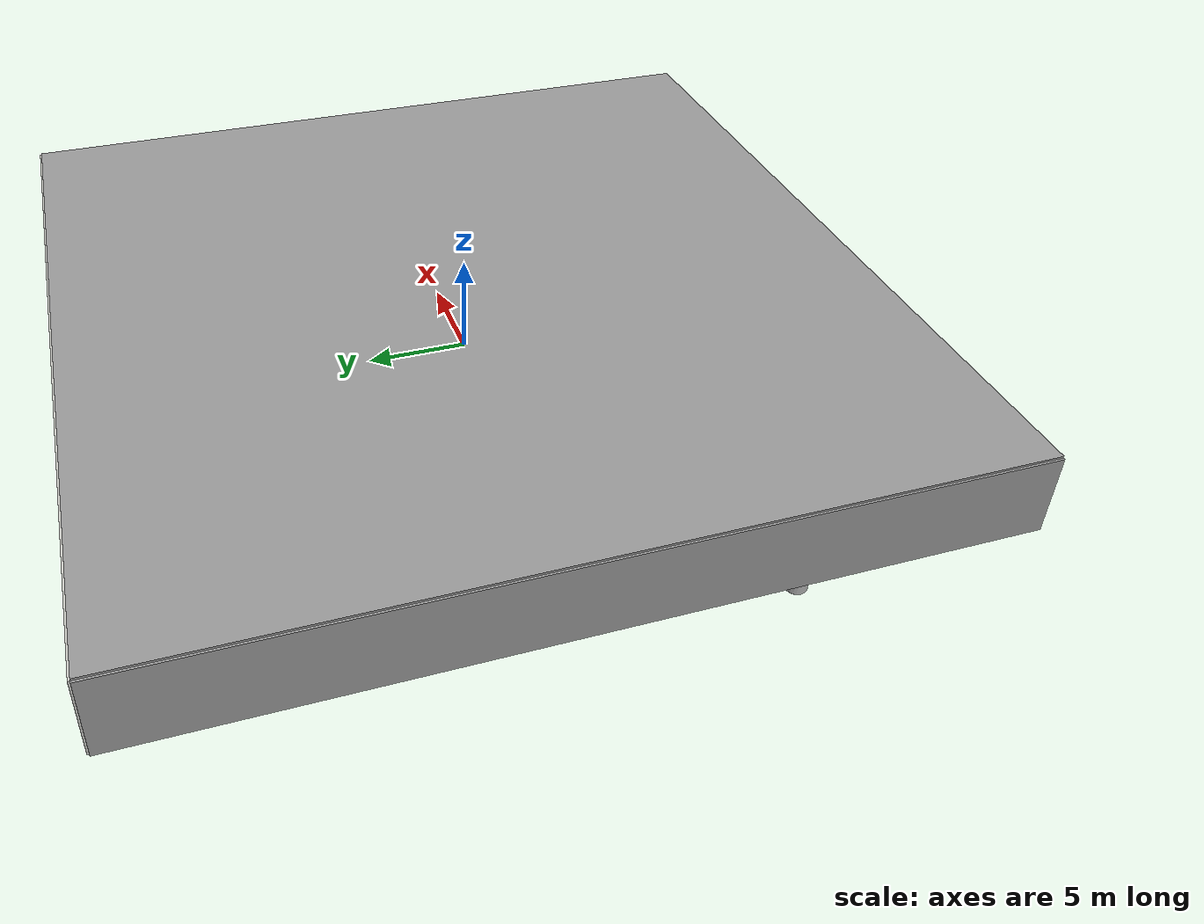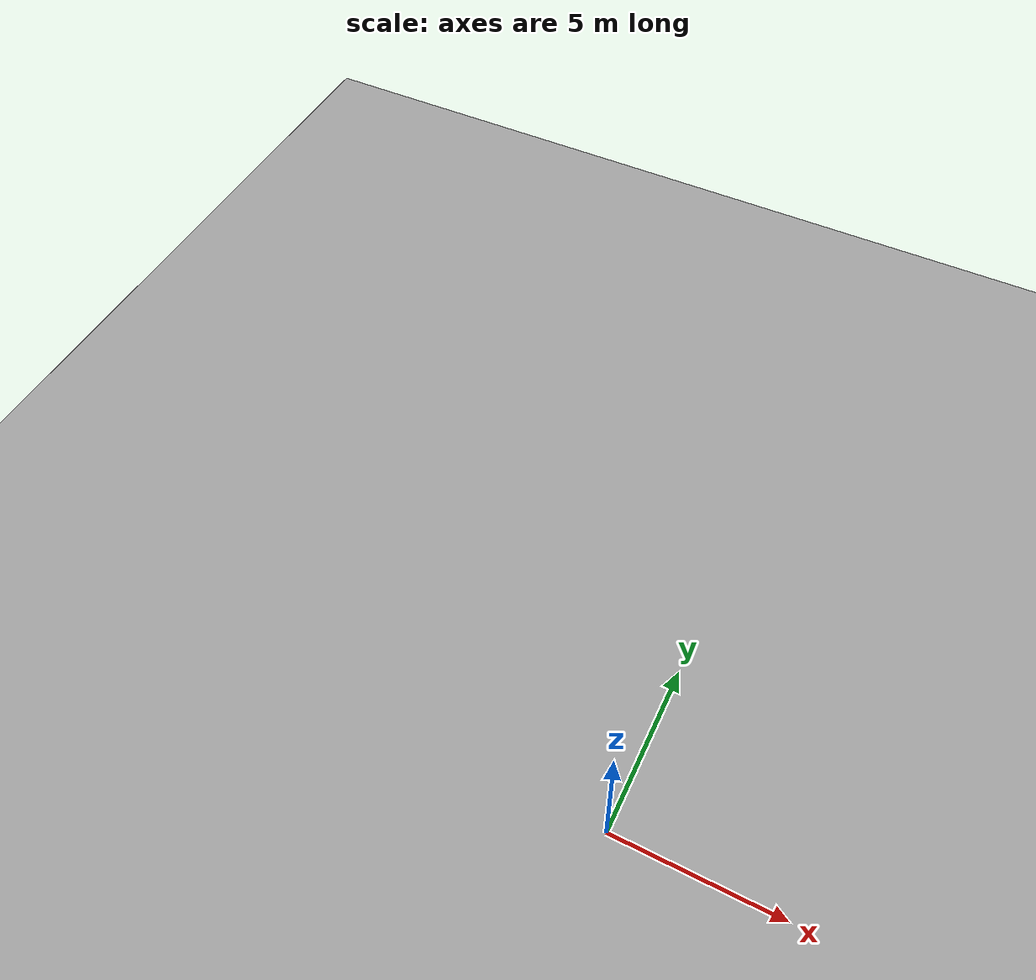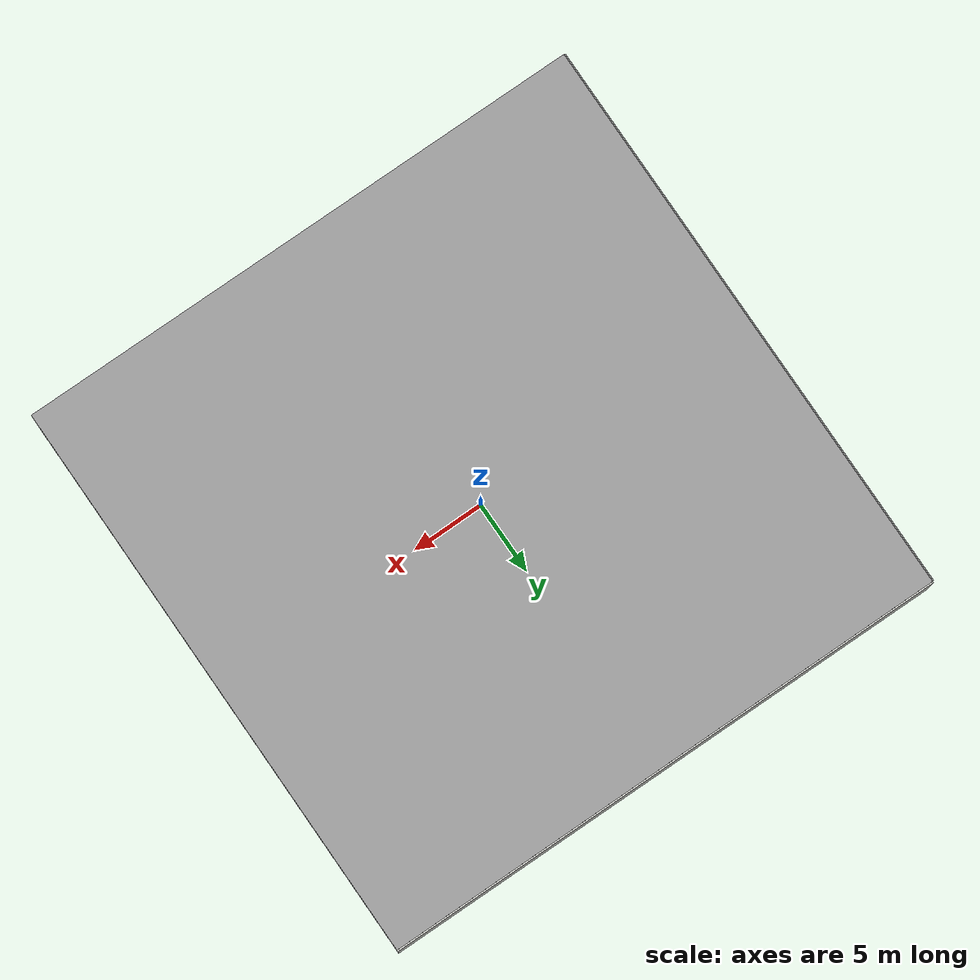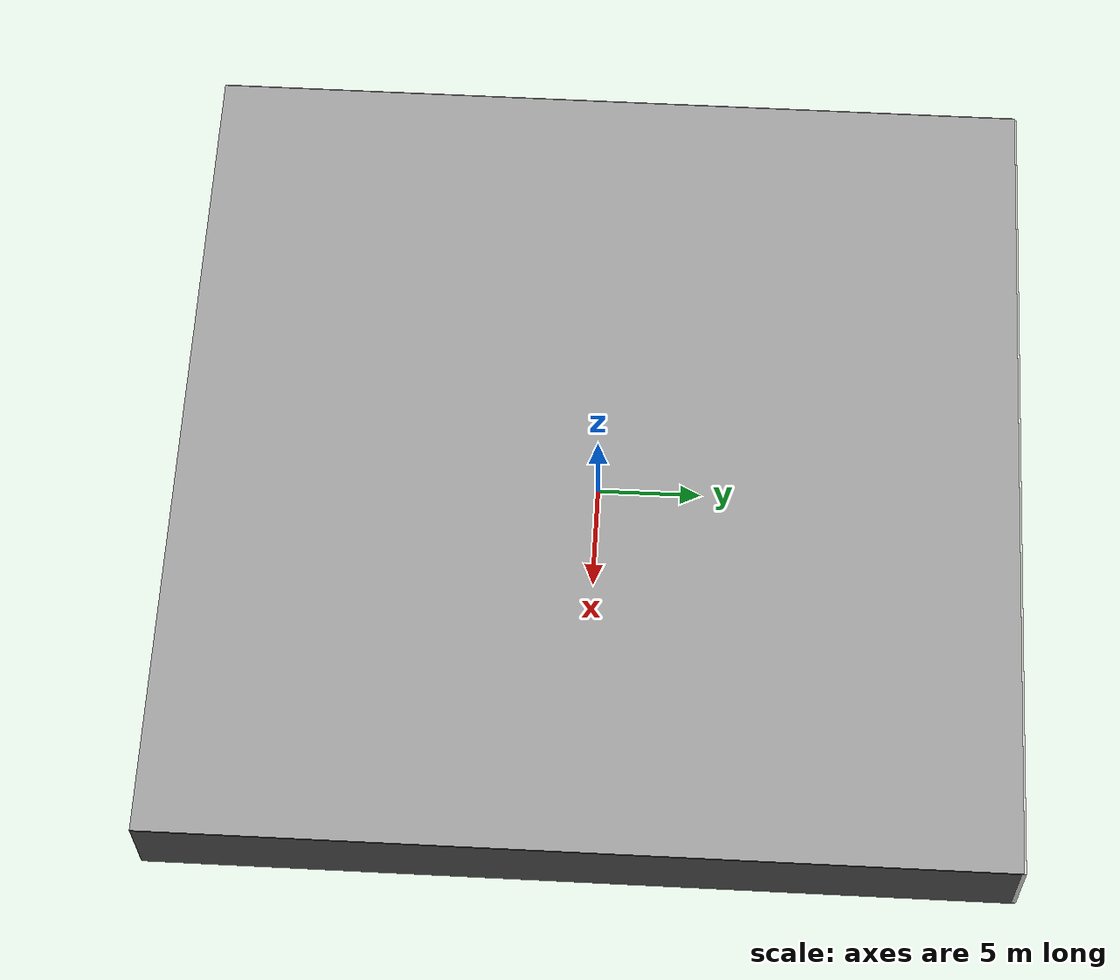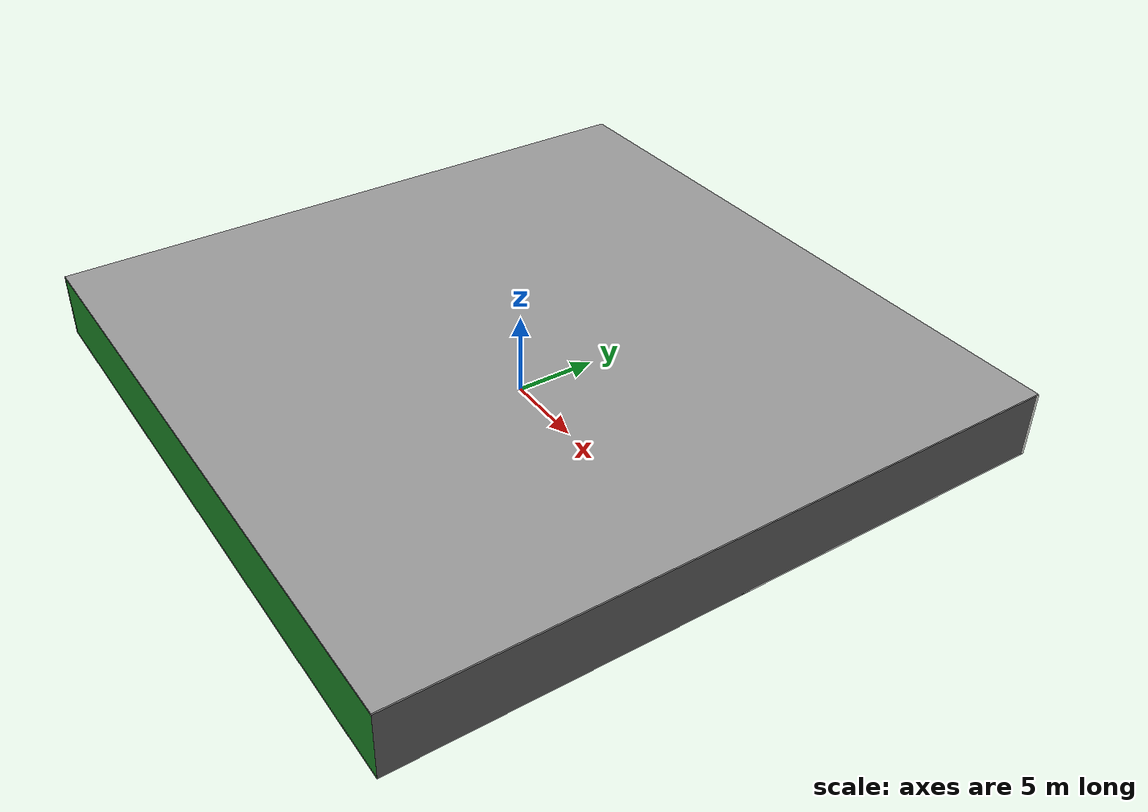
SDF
<sdf version="1.4">
 <world name="default">
  <physics type="ode">
   <max_step_size>0.001</max_step_size>
   <real_time_factor>1</real_time_factor>
   <real_time_update_rate>1000</real_time_update_rate>
   <gravity>0 0 -9.8</gravity>
  </physics>
  <scene><ambient>0.4 0.4 0.4 1</ambient><background>0.7 0.7 0.7 1</background><shadows>1</shadows></scene>
  <model name="Surrounding">
   <static>1</static>
   <link name="Ceiling">
    <collision name="Ceiling_Collision"><geometry><box><size>40 40 0.1</size></box></geometry></collision>
    <visual name="Ceiling_Visual">
     <geometry><box><size>40 40 0.1</size></box></geometry>
     <material>
      <script><uri>file://media/materials/scripts/gazebo.material</uri><name>Gazebo/Grey</name></script>
     </material>
    </visual>
    <pose>0 0 4.05 0 0 0</pose>
   </link>
   <link name="Wall_South">
    <collision name="Wall_South_Collision">
     <geometry><box><size>40 0 4</size></box></geometry>
     <pose>0 0 2 0 -0 0</pose>
    </collision>
    <visual name="Wall_South_Visual">
     <pose>0 0 2 0 -0 0</pose>
     <geometry><box><size>40 0 4</size></box></geometry>
     <material>
      <script><uri>file://media/materials/scripts/gazebo.material</uri><name>Gazebo/Green</name></script>
     </material>
    </visual>
    <velocity_decay><linear>0</linear><angular>0</angular></velocity_decay>
    <pose>0 -20 0 0 -0 0</pose>
   </link>
   <link name="Wall_East">
    <collision name="Wall_21_Collision">
     <geometry><box><size>40 0 4</size></box></geometry>
     <pose>0 0 2 0 -0 0</pose>
    </collision>
    <visual name="Wall_21_Visual">
     <pose>0 0 2 0 -0 0</pose>
     <geometry><box><size>40 0 4</size></box></geometry>
     <material>
      <script><uri>file://media/materials/scripts/gazebo.material</uri><name>Gazebo/DarkGrey</name></script>
     </material>
    </visual>
    <velocity_decay><linear>0</linear><angular>0</angular></velocity_decay>
    <pose>20 0 0 0 -0 1.5708</pose>
   </link>
   <link name="Wall_North">
    <collision name="Wall_22_Collision">
     <geometry><box><size>40 0.2 4</size></box></geometry>
     <pose>0 0 2 0 -0 0</pose>
    </collision>
    <visual name="Wall_22_Visual">
     <pose>0 0 2 0 -0 0</pose>
     <geometry><box><size>40 0.2 4</size></box></geometry>
     <material>
      <script><uri>file://media/materials/scripts/gazebo.material</uri><name>Gazebo/CeilingTiled</name></script>
     </material>
    </visual>
    <velocity_decay><linear>0</linear><angular>0</angular></velocity_decay>
    <pose>0 20 0 0 -0 0</pose>
   </link>
   <link name="Wall_West">
    <collision name="Wall_23_Collision">
     <geometry><box><size>40 0.2 4</size></box></geometry>
     <pose>0 0 2 0 -0 0</pose>
    </collision>
    <visual name="Wall_23_Visual">
     <pose>0 0 2 0 -0 0</pose>
     <geometry><box><size>40 0.2 4</size></box></geometry>
     <material>
      <script><uri>file://media/materials/scripts/gazebo.material</uri><name>Gazebo/Grey</name></script>
     </material>
    </visual>
    <velocity_decay><linear>0</linear><angular>0</angular></velocity_decay>
    <pose>-20 0 0 0 0 -1.5708</pose>
   </link>
   <link name="Ground_link">
    <collision name="collision">
     <pose>0 0 .05 0 -0 0</pose>
     <geometry><box><size>40 40 0.1</size></box></geometry>
    </collision>
    <visual name="visual">
     <pose>0 0 .05 0 -0 0</pose>
     <geometry><box><size>40 40 0.1</size></box></geometry>
     <material>
      <script><uri>file://media/materials/scripts/gazebo.material</uri><name>Gazebo/CloudySky</name></script>
     </material>
    </visual>
   </link>
   <static>1</static>
  </model>
  <spherical_coordinates>
   <surface_model>EARTH_WGS84</surface_model>
   <latitude_deg>0</latitude_deg>
   <longitude_deg>0</longitude_deg>
   <elevation>0</elevation>
   <heading_deg>0</heading_deg>
  </spherical_coordinates>
  <light name="lightball_0" type="diffuse">
   <diffuse>0.8 0.8 0.8 1</diffuse>
   <specular>0.2 0.2 0.2 1</specular>
   <attenuation>
    <range>100</range>
    <constant>0.7</constant>
    <linear>0.01</linear>
    <quadratic>0.001</quadratic>
   </attenuation>
   <direction>-0.5 0.1 -0.9</direction>
   <pose>8.60478533846 -16.8859722225 1.54587685059 0 0 0</pose>
  </light>
  <light name="lightball_1" type="diffuse">
   <diffuse>0.8 0.8 0.8 1</diffuse>
   <specular>0.2 0.2 0.2 1</specular>
   <attenuation>
    <range>100</range>
    <constant>0.7</constant>
    <linear>0.01</linear>
    <quadratic>0.001</quadratic>
   </attenuation>
   <direction>-0.5 0.1 -0.9</direction>
   <pose>-18.4390798578 15.7645000766 2.92132726873 0 0 0</pose>
  </light>
  <light name="lightball_2" type="diffuse">
   <diffuse>0.8 0.8 0.8 1</diffuse>
   <specular>0.2 0.2 0.2 1</specular>
   <attenuation>
    <range>100</range>
    <constant>0.7</constant>
    <linear>0.01</linear>
    <quadratic>0.001</quadratic>
   </attenuation>
   <direction>-0.5 0.1 -0.9</direction>
   <pose>-15.7535011145 -5.18804637747 2.37710215132 0 0 0</pose>
  </light>
  <light name="lightball_3" type="diffuse">
   <diffuse>0.8 0.8 0.8 1</diffuse>
   <specular>0.2 0.2 0.2 1</specular>
   <attenuation>
    <range>100</range>
    <constant>0.7</constant>
    <linear>0.01</linear>
    <quadratic>0.001</quadratic>
   </attenuation>
   <direction>-0.5 0.1 -0.9</direction>
   <pose>12.7810765451 16.2366213342 2.68616629491 0 0 0</pose>
  </light>
  <light name="lightball_4" type="diffuse">
   <diffuse>0.8 0.8 0.8 1</diffuse>
   <specular>0.2 0.2 0.2 1</specular>
   <attenuation>
    <range>100</range>
    <constant>0.7</constant>
    <linear>0.01</linear>
    <quadratic>0.001</quadratic>
   </attenuation>
   <direction>-0.5 0.1 -0.9</direction>
   <pose>4.67457671442 -0.359977293068 3.0456673428 0 0 0</pose>
  </light>
  <light name="lightball_5" type="diffuse">
   <diffuse>0.8 0.8 0.8 1</diffuse>
   <specular>0.2 0.2 0.2 1</specular>
   <attenuation>
    <range>100</range>
    <constant>0.7</constant>
    <linear>0.01</linear>
    <quadratic>0.001</quadratic>
   </attenuation>
   <direction>-0.5 0.1 -0.9</direction>
   <pose>1.51174330946 -11.3338364624 2.77928368129 0 0 0</pose>
  </light>
  <include>
   <uri>model://textured_shapes</uri>
   <pose>-17.3540276798 -15.1627150132 0 0 0 0.730006290474</pose>
  </include>
  <include>
   <uri>model://textured_shapes</uri>
   <pose>-18.1049240806 -8.33108766032 0 0 0 1.71929424912</pose>
  </include>
  <include><uri>model://cabinet</uri><pose>-18.5789490874 12.6663161715 0 0 0 1.11698027961</pose></include>
  <include><uri>model://cabinet</uri><pose>-18.4199111108 19.4063350337 0 0 0 1.57588912045</pose></include>
  <include><uri>model://table</uri><pose>-14.7000790177 -9.44377568733 0 0 0 2.03520520916</pose></include>
  <include>
   <uri>model://robocup_3Dsim_goal</uri>
   <pose>-13.4920916632 9.14000973793 0 0 0 1.64718175434</pose>
  </include>
  <include>
   <uri>model://robocup_3Dsim_goal</uri>
   <pose>-14.2742032778 12.7670076528 0 0 0 1.384314147</pose>
  </include>
  <include>
   <uri>model://robocup_3Dsim_goal</uri>
   <pose>-12.5840614819 -4.86966684114 0 0 0 0.165088896575</pose>
  </include>
  <include><uri>model://cabinet</uri><pose>-11.8559329284 -2.77643792573 0 0 0 1.05170834918</pose></include>
  <include><uri>model://cabinet</uri><pose>-7.71195018161 -8.88413909794 0 0 0 2.55754175544</pose></include>
  <include>
   <uri>model://construction_cone</uri>
   <pose>-8.58550369371 19.6235425315 0 0 0 0.162362465328</pose>
  </include>
  <include>
   <uri>model://construction_cone</uri>
   <pose>-5.63951238688 -15.3705626458 0 0 0 2.03392223671</pose>
  </include>
  <include><uri>model://cabinet</uri><pose>-5.05702048277 -0.0386136595098 0 0 0 1.46442794711</pose></include>
  <include>
   <uri>model://robocup_3Dsim_goal</uri>
   <pose>-5.78405678199 9.0723573223 0 0 0 3.05692046508</pose>
  </include>
  <include>
   <uri>model://construction_cone</uri>
   <pose>-6.47872876191 11.4156212556 0 0 0 0.684920259968</pose>
  </include>
  <include><uri>model://cabinet</uri><pose>-1.50264029186 12.4353817866 0 0 0 1.77160284612</pose></include>
  <include><uri>model://cabinet</uri><pose>0.0287896113432 -16.9115930837 0 0 0 3.11477676076</pose></include>
  <include><uri>model://table</uri><pose>-0.414018460331 16.1991978807 0 0 0 1.12404177904</pose></include>
  <include>
   <uri>model://robocup_3Dsim_goal</uri>
   <pose>4.48010796504 -1.43537124184 0 0 0 0.962278290094</pose>
  </include>
  <include><uri>model://cabinet</uri><pose>3.36587823554 4.28665761066 0 0 0 1.13554319167</pose></include>
  <include><uri>model://cabinet</uri><pose>3.94394992275 12.2148930926 0 0 0 1.43433651795</pose></include>
  <include><uri>model://cabinet</uri><pose>5.76168635241 -15.6133268012 0 0 0 0.768807937449</pose></include>
  <include>
   <uri>model://textured_shapes</uri>
   <pose>6.68339548553 0.752451097773 0 0 0 1.83231573445</pose>
  </include>
  <include>
   <uri>model://construction_cone</uri>
   <pose>7.44178176931 6.40141708737 0 0 0 0.57684082881</pose>
  </include>
  <include>
   <uri>model://textured_shapes</uri>
   <pose>9.63375529504 7.51646273663 0 0 0 2.51045211667</pose>
  </include>
  <include>
   <uri>model://robocup_3Dsim_goal</uri>
   <pose>8.31962829109 12.7653302054 0 0 0 2.46063412609</pose>
  </include>
  <include>
   <uri>model://construction_cone</uri>
   <pose>12.9603730768 -16.4315892991 0 0 0 3.05105297959</pose>
  </include>
  <include><uri>model://cabinet</uri><pose>12.5621027776 -6.00198749259 0 0 0 1.01775474196</pose></include>
  <include>
   <uri>model://construction_cone</uri>
   <pose>12.0261052966 -1.43766781547 0 0 0 3.09485487593</pose>
  </include>
  <include><uri>model://cabinet</uri><pose>12.3013091019 -0.645197844575 0 0 0 0.29802259321</pose></include>
  <include>
   <uri>model://construction_cone</uri>
   <pose>12.7657548594 6.49428280772 0 0 0 2.57805811043</pose>
  </include>
  <include>
   <uri>model://construction_cone</uri>
   <pose>12.6093686611 8.53122586859 0 0 0 1.72251900354</pose>
  </include>
  <include><uri>model://table</uri><pose>11.9783930831 11.363744552 0 0 0 1.55076625448</pose></include>
  <include>
   <uri>model://textured_shapes</uri>
   <pose>15.7531640668 -0.264113080352 0 0 0 0.734159673614</pose>
  </include>
 </world>
</sdf>

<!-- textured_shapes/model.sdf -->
<sdf version="1.6">
  <model name="textured_shapes">
    <pose>0 0 0.5 0 0 0</pose>
    <link name="box">
      <pose>0 -1.5 0 0 0 0</pose>
      <collision name="collision">
        <geometry>
          <box>
            <size>1 1 1</size>
          </box>
        </geometry>
      </collision>
      <visual name="visual">
        <geometry>
          <box>
            <size>1 1 1</size>
          </box>
        </geometry>
        <material>
          <script>
            <uri>model://../model_source/models/textured_shapes/materials/scripts</uri>
            <uri>model://../model_source/models/textured_shapes/materials/textures</uri>
            <name>TexturedShape/Squares</name>
          </script>
        </material>
      </visual>
    </link>
    <link name="sphere">
      <collision name="collision">
        <geometry>
          <sphere>
            <radius>0.5</radius>
          </sphere>
        </geometry>
      </collision>
      <visual name="visual">
        <geometry>
          <sphere>
            <radius>0.5</radius>
          </sphere>
        </geometry>
        <material>
          <script>
            <uri>model://../model_source/models/textured_shapes/materials/scripts</uri>
            <uri>model://../model_source/models/textured_shapes/materials/textures</uri>
            <name>TexturedShape/Squares</name>
          </script>
        </material>
      </visual>
    </link>
    <link name="cylinder">
      <pose>0 1.5 0 0 0 0</pose>
      <collision name="collision">
        <geometry>
          <cylinder>
            <radius>0.5</radius>
            <length>1</length>
          </cylinder>
        </geometry>
      </collision>
      <visual name="visual">
        <geometry>
          <cylinder>
            <radius>0.5</radius>
            <length>1</length>
          </cylinder>
        </geometry>
        <material>
          <script>
            <uri>model://../model_source/models/textured_shapes/materials/scripts</uri>
            <uri>model://../model_source/models/textured_shapes/materials/textures</uri>
            <name>TexturedShape/Squares</name>
          </script>
        </material>
      </visual>
    </link>
  </model>
</sdf>

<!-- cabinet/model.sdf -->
<sdf version="1.5">
  <model name="cabinet">
    <static>true</static>
    <link name="cabinet_bottom_plate">
      <inertial>
        <pose>0 0 -1 0 0 0</pose>
        <inertia>
          <ixx>2.050000</ixx>
          <ixy>0</ixy>
          <ixz>0</ixz>
          <iyy>2.050000</iyy>
          <iyz>0</iyz>
          <izz>2.050000</izz>
        </inertia>
        <mass>25.000000</mass>
      </inertial>
      <collision name="cabinet_bottom_plate_geom">
        <pose>0 0 0.010000 0 0 0</pose>
        <geometry>
          <box>
            <size>0.450000 0.450000 0.020000</size>
          </box>
        </geometry>
      </collision>
      <visual name="cabinet_bottom_plate_geom_visual">
        <pose>0 0 0.010000 0 0 0</pose>
        <geometry>
          <box>
            <size>0.450000 0.450000 0.020000</size>
          </box>
        </geometry>
        <material>
          <script>
            <uri>model://media/materials/scripts/gazebo.material</uri>
            <name>Gazebo/Wood</name>
          </script>
        </material>
      </visual>
      <collision name="cabinet_bottom_plate_geom_cabinet_back_plate">
        <pose>0.235000 0 0.510000 0 0 0</pose>
        <geometry>
          <box>
            <size>0.020000 0.450000 1.020000</size>
          </box>
        </geometry>
      </collision>
      <visual name="cabinet_bottom_plate_geom_cabinet_back_plate_visual">
        <pose>0.235000 0 0.510000 0 0 0</pose>
        <geometry>
          <box>
            <size>0.020000 0.450000 1.020000</size>
          </box>
        </geometry>
        <material>
          <script>
            <uri>model://media/materials/scripts/gazebo.material</uri>
            <name>Gazebo/Wood</name>
          </script>
        </material>
      </visual>
      <collision name="cabinet_bottom_plate_geom_cabinet_left_plate">
        <pose>0 0.235000 0.510000 0 0 0</pose>
        <geometry>
          <box>
            <size>0.450000 0.020000 1.020000</size>
          </box>
        </geometry>
      </collision>
      <visual name="cabinet_bottom_plate_geom_cabinet_left_plate_visual">
        <pose>0 0.235000 0.510000 0 0 0</pose>
        <geometry>
          <box>
            <size>0.450000 0.020000 1.020000</size>
          </box>
        </geometry>
        <material>
          <script>
            <uri>model://media/materials/scripts/gazebo.material</uri>
            <name>Gazebo/Wood</name>
          </script>
        </material>
      </visual>
      <collision name="cabinet_bottom_plate_geom_cabinet_middle_plate">
        <pose>0 0 0.510000 0 0 0</pose>
        <geometry>
          <box>
            <size>0.450000 0.450000 0.020000</size>
          </box>
        </geometry>
      </collision>
      <visual name="cabinet_bottom_plate_geom_cabinet_middle_plate_visual">
        <pose>0 0 0.510000 0 0 0</pose>
        <geometry>
          <box>
            <size>0.450000 0.450000 0.020000</size>
          </box>
        </geometry>
        <material>
          <script>
            <uri>model://media/materials/scripts/gazebo.material</uri>
            <name>Gazebo/Wood</name>
          </script>
        </material>
      </visual>
      <collision name="cabinet_bottom_plate_geom_cabinet_right_plate">
        <pose>0 -0.235000 0.510000 0 0 0</pose>
        <geometry>
          <box>
            <size>0.450000 0.020000 1.020000</size>
          </box>
        </geometry>
      </collision>
      <visual name="cabinet_bottom_plate_geom_cabinet_right_plate_visual">
        <pose>0 -0.235000 0.510000 0 0 0</pose>
        <geometry>
          <box>
            <size>0.450000 0.020000 1.020000</size>
          </box>
        </geometry>
        <material>
          <script>
            <uri>model://media/materials/scripts/gazebo.material</uri>
            <name>Gazebo/Wood</name>
          </script>
        </material>
      </visual>
      <collision name="cabinet_bottom_plate_geom_cabinet_top_plate">
        <pose>0 0 1.010000 0 0 0</pose>
        <geometry>
          <box>
            <size>0.450000 0.450000 0.020000</size>
          </box>
        </geometry>
      </collision>
      <visual name="cabinet_bottom_plate_geom_cabinet_top_plate_visual">
        <pose>0 0 1.010000 0 0 0</pose>
        <geometry>
          <box>
            <size>0.450000 0.450000 0.020000</size>
          </box>
        </geometry>
        <material>
          <script>
            <uri>model://media/materials/scripts/gazebo.material</uri>
            <name>Gazebo/Wood</name>
          </script>
        </material>
      </visual>
    </link>
  </model>
</sdf>

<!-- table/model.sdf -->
<sdf version="1.5">
  <model name="table">
    <static>true</static>
    <link name="link">
      <collision name="surface">
        <pose>0 0 1.0 0 0 0</pose>
        <geometry>
          <box>
            <size>1.5 0.8 0.03</size>
          </box>
        </geometry>
        <surface>
          <friction>
            <ode>
              <mu>0.6</mu>
              <mu2>0.6</mu2>
            </ode>
          </friction>
        </surface>
      </collision>
      <visual name="visual1">
        <pose>0 0 1.0 0 0 0</pose>
        <geometry>
          <box>
            <size>1.5 0.8 0.03</size>
          </box>
        </geometry>
        <material>
          <script>
            <uri>model://media/materials/scripts/gazebo.material</uri>
            <name>Gazebo/Wood</name>
          </script>
        </material>
      </visual>
      <collision name="front_left_leg">
        <pose>0.68 0.38 0.5 0 0 0</pose>
        <geometry>
          <cylinder>
            <radius>0.02</radius>
            <length>1.0</length>
          </cylinder>
        </geometry>
      </collision>
      <visual name="front_left_leg">
        <pose>0.68 0.38 0.5 0 0 0</pose>
        <geometry>
          <cylinder>
            <radius>0.02</radius>
            <length>1.0</length>
          </cylinder>
        </geometry>
        <material>
          <script>
            <uri>model://media/materials/scripts/gazebo.material</uri>
            <name>Gazebo/Grey</name>
          </script>
        </material>
      </visual>
      <collision name="front_right_leg">
        <pose>0.68 -0.38 0.5 0 0 0</pose>
        <geometry>
          <cylinder>
            <radius>0.02</radius>
            <length>1.0</length>
          </cylinder>
        </geometry>
      </collision>
      <visual name="front_right_leg">
        <pose>0.68 -0.38 0.5 0 0 0</pose>
        <geometry>
          <cylinder>
            <radius>0.02</radius>
            <length>1.0</length>
          </cylinder>
        </geometry>
        <material>
          <script>
            <uri>model://media/materials/scripts/gazebo.material</uri>
            <name>Gazebo/Grey</name>
          </script>
        </material>
      </visual>
      <collision name="back_right_leg">
        <pose>-0.68 -0.38 0.5 0 0 0</pose>
        <geometry>
          <cylinder>
            <radius>0.02</radius>
            <length>1.0</length>
          </cylinder>
        </geometry>
      </collision>
      <visual name="back_right_leg">
        <pose>-0.68 -0.38 0.5 0 0 0</pose>
        <geometry>
          <cylinder>
            <radius>0.02</radius>
            <length>1.0</length>
          </cylinder>
        </geometry>
        <material>
          <script>
            <uri>model://media/materials/scripts/gazebo.material</uri>
            <name>Gazebo/Grey</name>
          </script>
        </material>
      </visual>
      <collision name="back_left_leg">
        <pose>-0.68 0.38 0.5 0 0 0</pose>
        <geometry>
          <cylinder>
            <radius>0.02</radius>
            <length>1.0</length>
          </cylinder>
        </geometry>
      </collision>
      <visual name="back_left_leg">
        <pose>-0.68 0.38 0.5 0 0 0</pose>
        <geometry>
          <cylinder>
            <radius>0.02</radius>
            <length>1.0</length>
          </cylinder>
        </geometry>
        <material>
          <script>
            <uri>model://media/materials/scripts/gazebo.material</uri>
            <name>Gazebo/Grey</name>
          </script>
        </material>
      </visual>
    </link>
  </model>
</sdf>

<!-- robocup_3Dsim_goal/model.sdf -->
<sdf version="1.5">
  <model name="robocup_3d_goal">
    <static>true</static>
    <link name="left_post">
      <pose>0 1.05 0.45 0 0 0</pose>
      <collision name="collision">
        <geometry>
          <cylinder>
            <radius>0.05</radius>
            <length>0.9</length>
          </cylinder>
        </geometry>
      </collision>
      <visual name="visual">
        <geometry>
          <cylinder>
            <radius>0.05</radius>
            <length>0.9</length>
          </cylinder>
        </geometry>
        <material>
          <script>
            <uri>file://media/materials/scripts/gazebo.material</uri>
            <name>Gazebo/ZincYellow</name>
          </script>
        </material>
      </visual>
    </link>
    <link name="left_support_horiz_lower">
      <pose>0.30 1.05 0.01 0 0 0</pose>
      <collision name="collision">
        <geometry>
          <box>
            <size>0.50 0.02 0.02</size>
          </box>
        </geometry>
      </collision>
      <visual name="visual">
        <geometry>
          <box>
            <size>0.50 0.02 0.02</size>
          </box>
        </geometry>
        <material>
          <script>
            <uri>file://media/materials/scripts/gazebo.material</uri>
            <name>Gazebo/White</name>
          </script>
        </material>
      </visual>
    </link>
    <link name="left_support_horiz_upper">
      <pose>0.30 1.05 0.79 0 0 0</pose>
      <collision name="collision">
        <geometry>
          <box>
            <size>0.50 0.02 0.02</size>
          </box>
        </geometry>
      </collision>
      <visual name="visual">
        <geometry>
          <box>
            <size>0.50 0.02 0.02</size>
          </box>
        </geometry>
        <material>
          <script>
            <uri>file://media/materials/scripts/gazebo.material</uri>
            <name>Gazebo/White</name>
          </script>
        </material>
      </visual>
    </link>
    <link name="left_support_vertical">
      <pose>0.56 1.05 0.4 0 1.5708 0</pose>
      <collision name="collision">
        <geometry>
          <box>
            <size>0.80 0.02 0.02</size>
          </box>
        </geometry>
      </collision>
      <visual name="visual">
        <geometry>
          <box>
            <size>0.80 0.02 0.02</size>
          </box>
        </geometry>
        <material>
          <script>
            <uri>file://media/materials/scripts/gazebo.material</uri>
            <name>Gazebo/White</name>
          </script>
        </material>
      </visual>
    </link>
    <link name="right_support_horiz_lower">
      <pose>0.30 -1.05 0.01 0 0 0</pose>
      <collision name="collision">
        <geometry>
          <box>
            <size>0.50 0.02 0.02</size>
          </box>
        </geometry>
      </collision>
      <visual name="visual">
        <geometry>
          <box>
            <size>0.50 0.02 0.02</size>
          </box>
        </geometry>
        <material>
          <script>
            <uri>file://media/materials/scripts/gazebo.material</uri>
            <name>Gazebo/White</name>
          </script>
        </material>
      </visual>
    </link>
    <link name="right_support_horiz_upper">
      <pose>0.30 -1.05 0.79 0 0 0</pose>
      <collision name="collision">
        <geometry>
          <box>
            <size>0.50 0.02 0.02</size>
          </box>
        </geometry>
      </collision>
      <visual name="visual">
        <geometry>
          <box>
            <size>0.50 0.02 0.02</size>
          </box>
        </geometry>
        <material>
          <script>
            <uri>file://media/materials/scripts/gazebo.material</uri>
            <name>Gazebo/White</name>
          </script>
        </material>
      </visual>
    </link>
    <link name="right_support_vertical">
      <pose>0.56 -1.05 0.4 0 1.5708 0</pose>
      <collision name="collision">
        <geometry>
          <box>
            <size>0.80 0.02 0.02</size>
          </box>
        </geometry>
      </collision>
      <visual name="visual">
        <geometry>
          <box>
            <size>0.80 0.02 0.02</size>
          </box>
        </geometry>
        <material>
          <script>
            <uri>file://media/materials/scripts/gazebo.material</uri>
            <name>Gazebo/White</name>
          </script>
        </material>
      </visual>
    </link>
    <link name="center_support_horiz_lower">
      <pose>0.56 0 0.01 0 1.5708 0</pose>
      <collision name="collision">
        <geometry>
          <box>
            <size>0.02 2.08 0.02</size>
          </box>
        </geometry>
      </collision>
      <visual name="visual">
        <geometry>
          <box>
            <size>0.02 2.08 0.02</size>
          </box>
        </geometry>
        <material>
          <script>
            <uri>file://media/materials/scripts/gazebo.material</uri>
            <name>Gazebo/White</name>
          </script>
        </material>
      </visual>
    </link>
    <link name="center_support_horiz_upper">
      <pose>0.56 0 0.79 0 1.5708 0</pose>
      <collision name="collision">
        <geometry>
          <box>
            <size>0.02 2.08 0.02</size>
          </box>
        </geometry>
      </collision>
      <visual name="visual">
        <geometry>
          <box>
            <size>0.02 2.08 0.02</size>
          </box>
        </geometry>
        <material>
          <script>
            <uri>file://media/materials/scripts/gazebo.material</uri>
            <name>Gazebo/White</name>
          </script>
        </material>
      </visual>
    </link>
    <link name="right_post">
      <pose>0 -1.05 0.45 0 0 0</pose>
      <collision name="collision">
        <geometry>
          <cylinder>
            <radius>0.05</radius>
            <length>0.9</length>
          </cylinder>
        </geometry>
      </collision>
      <visual name="visual">
        <geometry>
          <cylinder>
            <radius>0.05</radius>
            <length>0.9</length>
          </cylinder>
        </geometry>
        <material>
          <script>
            <uri>file://media/materials/scripts/gazebo.material</uri>
            <name>Gazebo/ZincYellow</name>
          </script>
        </material>
      </visual>
    </link>
    <link name="crossbar">
      <pose>0 0 0.85 1.57 1.57 0</pose>
      <collision name="collision">
        <geometry>
          <cylinder>
            <radius>0.05</radius>
            <length>2.0</length>
          </cylinder>
        </geometry>
      </collision>
      <visual name="visual">
        <geometry>
          <cylinder>
            <radius>0.05</radius>
            <length>2.0</length>
          </cylinder>
        </geometry>
        <material>
          <script>
            <uri>file://media/materials/scripts/gazebo.material</uri>
            <name>Gazebo/ZincYellow</name>
          </script>
        </material>
      </visual>
    </link>
    <link name="center_net">
      <pose>0.56 0 0.40 0 0 0</pose>
      <collision name="collision">
        <geometry>
          <box>
            <size>0.01 2.1 0.80</size>
          </box>
        </geometry>
      </collision>
      <visual name="visual">
        <geometry>
          <box>
            <size>0.01 2.1 0.80</size>
          </box>
        </geometry>
        <material>
          <script>
            <uri>model://../model_source/models/robocup09_spl_field/materials/scripts/</uri>
            <uri>model://../model_source/models/robocup09_spl_field/materials/textures/</uri>
            <name>RoboCup/Net</name>
          </script>
        </material>
      </visual>
    </link>
    <link name="left_net">
      <pose>0.30 1.05 0.40 0 0 0</pose>
      <collision name="collision">
        <geometry>
          <box>
            <size>0.50 0.01 0.76</size>
          </box>
        </geometry>
      </collision>
      <visual name="visual">
        <geometry>
          <box>
            <size>0.50 0.01 0.76</size>
          </box>
        </geometry>
        <material>
          <script>
            <uri>model://../model_source/models/robocup09_spl_field/materials/scripts/</uri>
            <uri>model://../model_source/models/robocup09_spl_field/materials/textures/</uri>
            <name>RoboCup/Net</name>
          </script>
        </material>
      </visual>
    </link>
    <link name="right_net">
      <pose>0.30 -1.05 0.40 0 0 0</pose>
      <collision name="collision">
        <geometry>
          <box>
            <size>0.50 0.01 0.76</size>
          </box>
        </geometry>
      </collision>
      <visual name="visual">
        <geometry>
          <box>
            <size>0.50 0.01 0.76</size>
          </box>
        </geometry>
        <material>
          <script>
            <uri>model://../model_source/models/robocup09_spl_field/materials/scripts/</uri>
            <uri>model://../model_source/models/robocup09_spl_field/materials/textures/</uri>
            <name>RoboCup/Net</name>
          </script>
        </material>
      </visual>
    </link>
  </model>
</sdf>

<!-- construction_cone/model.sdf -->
<sdf version="1.5">
  <model name="Construction Cone">
    <link name="link">
      <collision name="collision">
        <geometry>
          <mesh>
            <scale>10 10 10</scale>
            <uri>file://isr-testbed/construction_cone/meshes/construction_cone.dae</uri>
          </mesh>
        </geometry>
      </collision>
      <visual name="visual">
        <geometry>
          <mesh>
            <scale>10 10 10</scale>
            <uri>file://isr-testbed/construction_cone/meshes/construction_cone.dae</uri>
          </mesh>
        </geometry>
      </visual>
    </link>
  </model>
</sdf>
